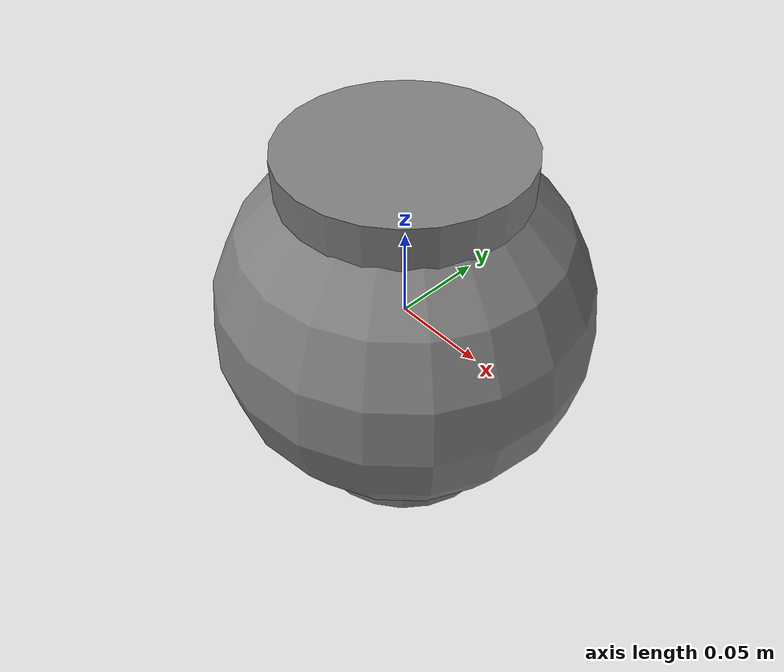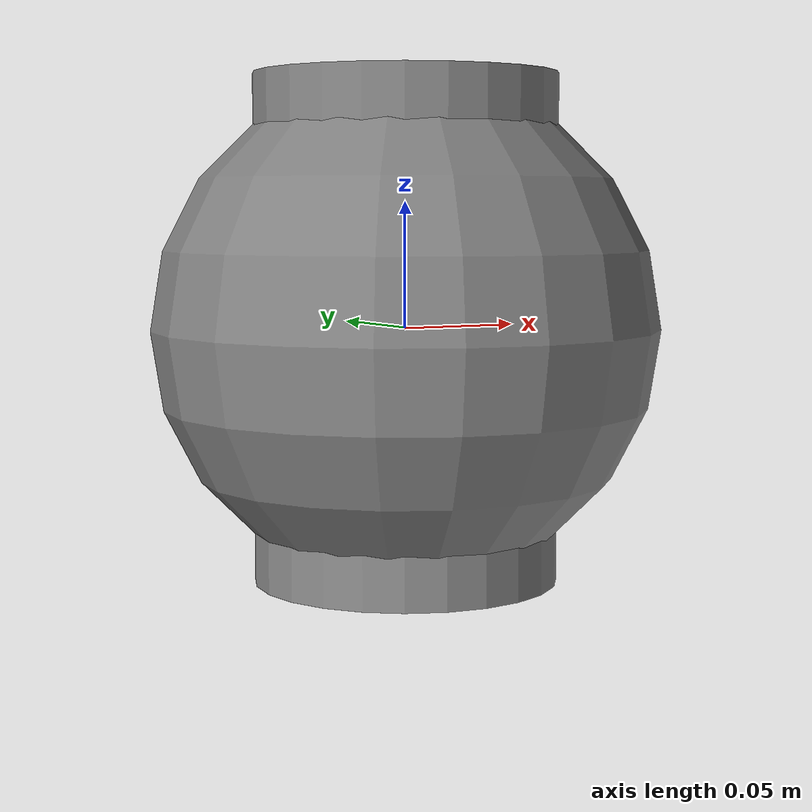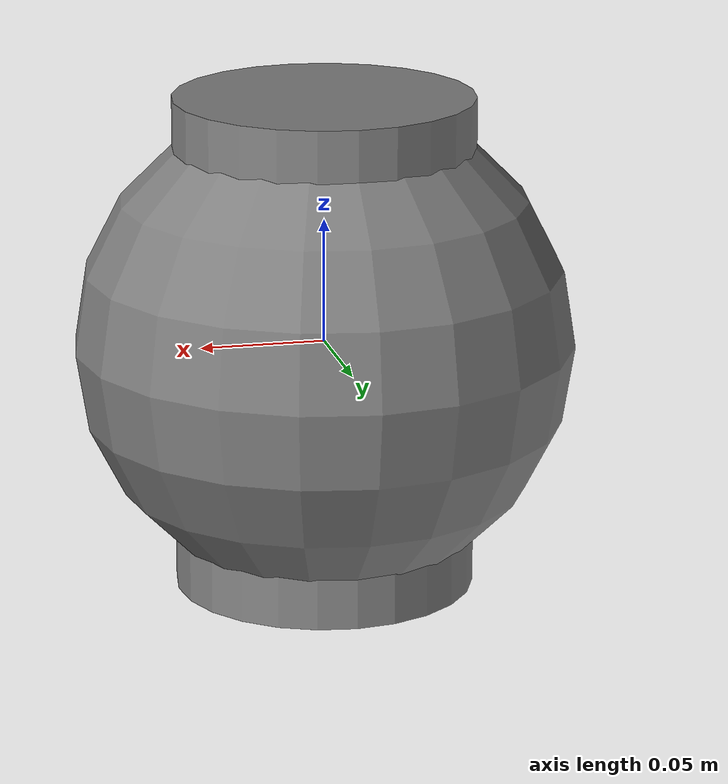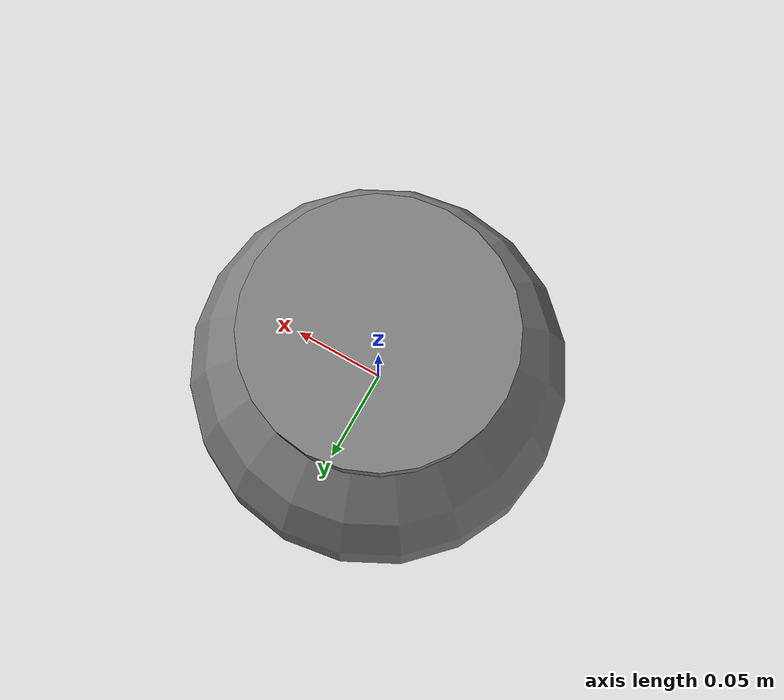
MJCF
<mujoco model="sweep_sphere_cylinder_mg">
  <worldbody>
    <body name="a"><freejoint/><geom name="ga" type="sphere" size="0.1" margin="0.02" gap="0.03" mass="1"/></body>
    <body name="b"><freejoint/><geom name="gb" type="cylinder" size="0.06 0.1" margin="0.02" gap="0.03" mass="1"/></body>
  </worldbody>
</mujoco>
